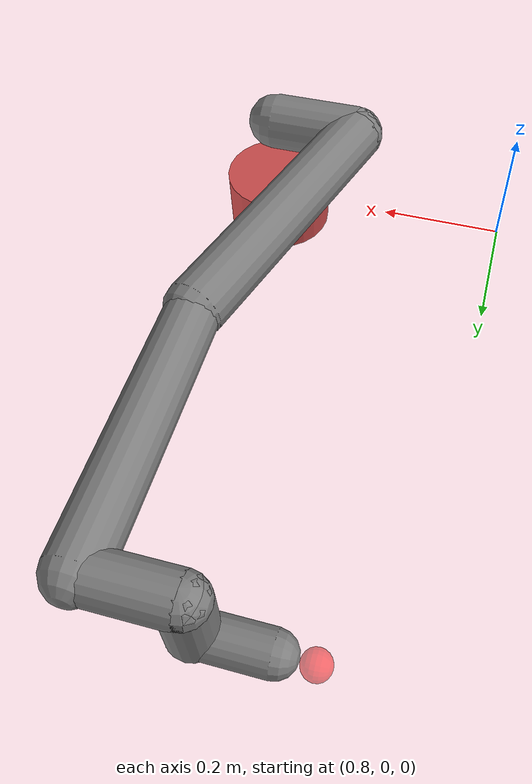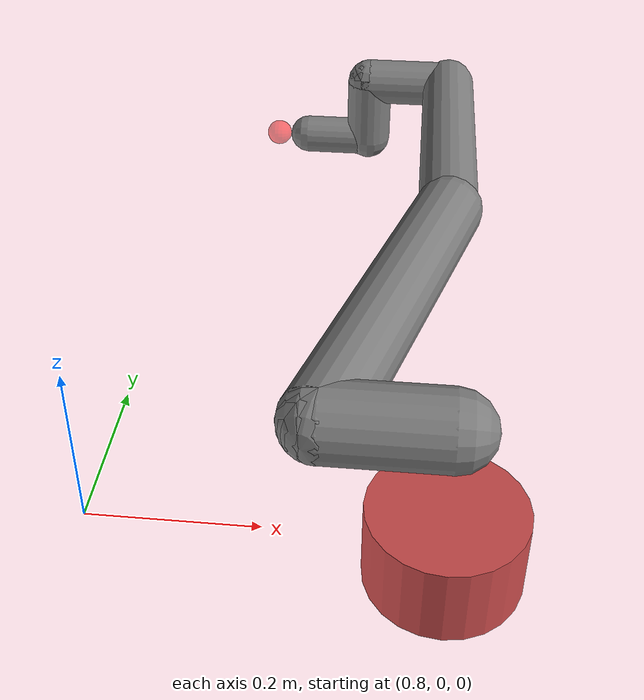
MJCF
<mujoco model="ur5e_simplified">
  <compiler angle="radian" meshdir="assets" autolimits="true"/>
  <option integrator="implicitfast"/>

  <default>
    <default class="ur5e">
      <material specular="0.5" shininess="0.25"/>
      <joint axis="0 1 0" range="-6.28319 6.28319" armature="0.1"/>
      <general gaintype="fixed" biastype="affine" ctrlrange="-6.2831 6.2831"
               gainprm="2000" biasprm="0 -2000 -400" forcerange="-150 150"/>
      <default class="size3">
        <default class="size3_limited">
          <joint range="-3.1415 3.1415"/>
          <general ctrlrange="-3.1415 3.1415"/>
        </default>
      </default>
      <default class="size1">
        <general gainprm="500" biasprm="0 -500 -100" forcerange="-28 28"/>
      </default>
      <default class="visual">
        <geom type="capsule" size="0.04 0.2" contype="0" conaffinity="0" group="2"/>
      </default>
      <default class="collision">
        <geom type="capsule" group="3"/>
        <default class="eef_collision">
          <geom type="cylinder"/>
        </default>
      </default>
      <site size="0.001" rgba="0.5 0.5 0.5 0.3" group="0"/>
    </default>
  </default>

  <worldbody>
    <body name="base_0" euler="0 0 1.5708" pos="1.2 0 0" childclass="ur5e">
      <inertial mass="4.0" pos="0 0 0" diaginertia="0.004433 0.004433 0.0072"/>
      <geom type="cylinder" size="0.09 0.05" rgba="0.8 0.3 0.3 1"/>
      <camera name="cam_0" pos="0 0 1.5" euler="0.9 0 0" fovy="60"/>
      <body name="shoulder_link_0" pos="0 0 0.163">
        <inertial mass="3.7" pos="0 0 0" diaginertia="0.01027 0.01027 0.00666"/>
        <joint name="shoulder_pan_joint_0" class="size3" axis="0 0 1"/>
        <geom type="capsule" fromto="0 0 0 0 0.138 0" size="0.045"/>
        <body name="upper_arm_link_0" pos="0 0.138 0" quat="1 0 1 0">
          <inertial mass="8.393" pos="0 0 0.2125" diaginertia="0.13389 0.13389 0.0151"/>
          <joint name="shoulder_lift_joint_0" class="size3" axis="0 1 0"/>
          <geom type="capsule" fromto="0 0 0 0 -0.131 0.425" size="0.045"/>
          <body name="forearm_link_0" pos="0 -0.131 0.425">
            <inertial mass="2.275" pos="0 0 0.196" diaginertia="0.03118 0.03118 0.0041"/>
            <joint name="elbow_joint_0" class="size3_limited" axis="0 1 0"/>
            <geom type="capsule" fromto="0 0 0 0 0 0.392" size="0.04"/>
            <body name="wrist_y1_link_0" pos="0 0 0.392" quat="1 0 1 0">
              <inertial mass="1.219" pos="0 0.127 0" diaginertia="0.00256 0.00256 0.00219"/>
              <joint name="wrist_y1_joint_0" class="size1" axis="0 1 0"/>
              <geom type="capsule" fromto="0 0 0 0 0.127 0" size="0.035"/>
              <body name="wrist_z_link_0" pos="0 0.127 0">
                <inertial mass="1.219" pos="0 0 0.1" diaginertia="0.00256 0.00256 0.00219"/>
                <joint name="wrist_z_joint_0" class="size1" axis="0 0 1"/>
                <geom type="capsule" fromto="0 0 0 0 0 0.1" size="0.035"/>
                <body name="wrist_y2_link_0" pos="0 0 0.1" euler="0 3.1416 0">
                  <inertial mass="0.1889" pos="0 0.0771683 0" quat="1 0 0 1" diaginertia="0.0001321 0.000099 0.000099"/>
                  <joint name="wrist_y2_joint_0" class="size1" axis="0 1 0"/>
                  <geom type="capsule" fromto="0 0 0 0 0.1 0" size="0.03"/>
                  <site name="attachment_site_0" pos="0 0.15 0" quat="-1 1 0 0" size="0.02" rgba="1 0 0 0.5"/>
                </body>
              </body>
            </body>
          </body>
        </body>
      </body>
    </body>
  </worldbody>

  <actuator>
    <general class="size3" name="shoulder_pan_0" joint="shoulder_pan_joint_0"/>
    <general class="size3" name="shoulder_lift_0" joint="shoulder_lift_joint_0"/>
    <general class="size3_limited" name="elbow_0" joint="elbow_joint_0"/>
    <general class="size1" name="wrist_y1_0" joint="wrist_y1_joint_0"/>
    <general class="size1" name="wrist_z_0" joint="wrist_z_joint_0"/>
    <general class="size1" name="wrist_y2_0" joint="wrist_y2_joint_0"/>
  </actuator>
</mujoco>
